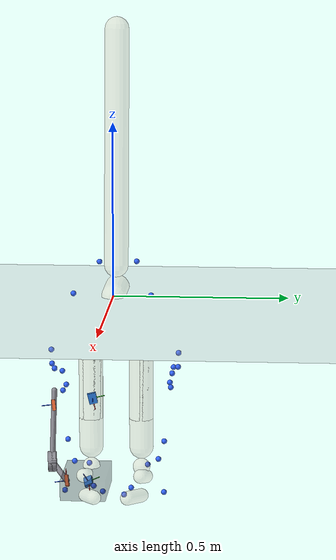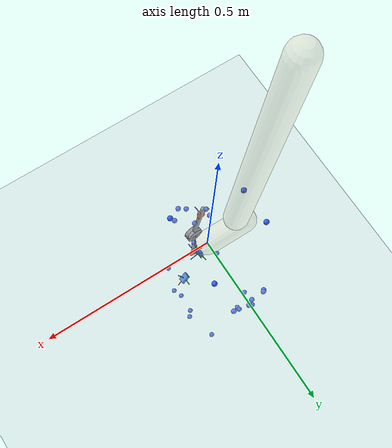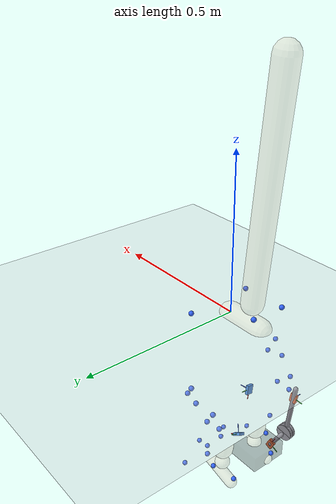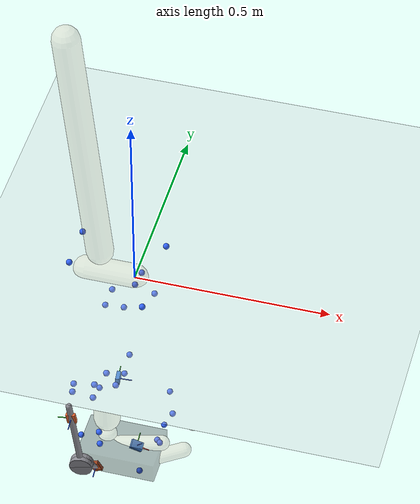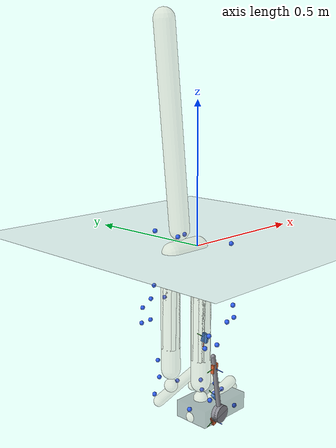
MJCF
<mujoco model="AB20">
  <compiler angle="radian" autolimits="true"/>
  <option timestep="0.005" gravity="0 0 -9.81"><flag contact="disable"/></option>
  <visual><global offwidth="1600" offheight="1200"/>
    <headlight ambient="0.55 0.55 0.55" diffuse="0.6 0.6 0.6"/></visual>
  <default><joint limited="false" damping="0"/><geom contype="0" conaffinity="0"/></default>
  <asset>
    <texture name="grid" type="2d" builtin="checker" rgb1="0.75 0.77 0.8" rgb2="0.85 0.87 0.9" width="512" height="512"/>
    <material name="grid" texture="grid" texrepeat="2 2" texuniform="true"/>
    <material name="skin" rgba="0.85 0.72 0.62 0.28"/>
  </asset>
  <worldbody>
    <light pos="0 0 4" dir="0 0 -1"/>
    <geom name="floor" type="plane" size="0 0 0.05" material="grid"/>
    <body name="pelvis" pos="0 0 0" quat="1 0 0 0">
      <joint name="pelvis_tx" type="slide" axis="1 0 0"/>
      <joint name="pelvis_ty" type="slide" axis="0 0 1"/>
      <joint name="pelvis_tz" type="slide" axis="0 -1 0"/>
      <joint name="pelvis_tilt" type="hinge" axis="0 -1 0"/>
      <joint name="pelvis_list" type="hinge" axis="1 0 0"/>
      <joint name="pelvis_rotation" type="hinge" axis="0 0 1"/>
      <inertial pos="-0.062069295 0 0" mass="10.7342" diaginertia="0.10734209 0.10734209 0.10734209"/>
      <geom type="capsule" fromto="0 0 0 -0.12413859 0 0" size="0.035" material="skin" mass="0"/>
      <site name="m_R_ASIS" pos="0.051108366 -0.10978101 0.018015081" size="0.008" rgba="0.2 0.4 1 1" group="2"/>
      <site name="m_L_ASIS" pos="0.050746581 0.11137873 0.01492082" size="0.008" rgba="0.2 0.4 1 1" group="2"/>
      <site name="m_L_PSIS" pos="-0.14970844 0.054369327 0.069853841" size="0.008" rgba="0.2 0.4 1 1" group="2"/>
      <site name="m_R_PSIS" pos="-0.15140817 -0.054568523 0.0671458" size="0.008" rgba="0.2 0.4 1 1" group="2"/>
      <body name="femur_r" pos="-0.062069295 -0.073306735 -0.058030841" quat="1 0 0 0">
        <joint name="hip_flexion_r" type="hinge" axis="0 -1 0"/>
        <joint name="hip_adduction_r" type="hinge" axis="1 0 0"/>
        <joint name="hip_rotation_r" type="hinge" axis="0 0 1"/>
        <inertial pos="0 0 -0.15976041" mass="8.47781" diaginertia="0.084778101 0.084778101 0.084778101"/>
        <geom type="capsule" fromto="0 0 0 0 0 -0.31952082" size="0.035" material="skin" mass="0"/>
        <site name="m_R_Thigh_Upper" pos="0.038305952 -0.1101171 -0.10849112" size="0.008" rgba="0.2 0.4 1 1" group="2"/>
        <site name="m_R_Thigh_Front" pos="0.058063562 -0.098980911 -0.15935557" size="0.008" rgba="0.2 0.4 1 1" group="2"/>
        <site name="m_R_Thigh_Rear" pos="0.0061621237 -0.11218336 -0.15828189" size="0.008" rgba="0.2 0.4 1 1" group="2"/>
        <site name="m_R_Knee_Lat" pos="-0.0013760862 -0.068321766 -0.38789228" size="0.008" rgba="0.2 0.4 1 1" group="2"/>
        <body name="tibia_r" pos="0 0 0" quat="1 0 0 0">
<geom name="gt_shank_axis_x" type="capsule" size="0.0012" fromto="0.03090 0.00750 -0.25390 0.02819 0.01492 -0.28800" rgba="1 0.1 0.1 1" contype="0" conaffinity="0" mass="0"/>
<geom name="gt_shank_axis_y" type="capsule" size="0.0012" fromto="0.03090 0.00750 -0.25390 0.02794 0.04153 -0.24626" rgba="0.1 0.8 0.1 1" contype="0" conaffinity="0" mass="0"/>
<geom name="gt_shank_axis_z" type="capsule" size="0.0012" fromto="0.03090 0.00750 -0.25390 0.06567 0.01098 -0.25591" rgba="0.1 0.3 1 1" contype="0" conaffinity="0" mass="0"/>
<geom name="exo_shank_axis_x" type="capsule" size="0.0012" fromto="-0.05816 -0.11548 -0.29944 -0.06184 -0.11989 -0.26492" rgba="1 0.1 0.1 1" contype="0" conaffinity="0" mass="0"/>
<geom name="exo_shank_axis_y" type="capsule" size="0.0012" fromto="-0.05816 -0.11548 -0.29944 -0.09290 -0.11717 -0.30336" rgba="0.1 0.8 0.1 1" contype="0" conaffinity="0" mass="0"/>
<geom name="exo_shank_axis_z" type="capsule" size="0.0012" fromto="-0.05816 -0.11548 -0.29944 -0.05601 -0.15016 -0.30364" rgba="0.1 0.3 1 1" contype="0" conaffinity="0" mass="0"/>
<geom name="encoder_shank" type="cylinder" size="0.03 0.012" fromto="-0.03466 -0.13116 -0.46699 -0.03654 -0.10724 -0.46621" rgba="0.55 0.55 0.58 1" contype="0" conaffinity="0" mass="0"/>
<geom name="strut_shank" type="capsule" size="0.008" fromto="-0.03560 -0.11920 -0.46660 -0.06380 -0.11455 -0.25765" rgba="0.55 0.55 0.58 1" contype="0" conaffinity="0" mass="0"/>
          <joint name="knee_r_translation1" type="slide" axis="1 0 0"/>
          <joint name="knee_r_translation2" type="slide" axis="0 0 1"/>
          <joint name="knee_angle_r" type="hinge" axis="0 -1 0"/>
          <inertial pos="0 0 -0.20258409" mass="3.37922" diaginertia="0.033792204 0.033792204 0.033792204"/>
          <geom type="capsule" fromto="0 0 0 0 0 -0.40516817" size="0.035" material="skin" mass="0"/>
          <site name="m_R_Shank_Upper" pos="-0.056292605 -0.089393352 -0.19625522" size="0.008" rgba="0.2 0.4 1 1" group="2"/>
          <site name="m_R_Shank_Front" pos="-0.0089238407 -0.082856207 -0.24234959" size="0.008" rgba="0.2 0.4 1 1" group="2"/>
          <site name="m_R_Shank_Rear" pos="-0.064444327 -0.079157425 -0.23985187" size="0.008" rgba="0.2 0.4 1 1" group="2"/>
          <site name="m_R_Ankle_Lat" pos="-0.0064313623 -0.049930393 -0.45525184" size="0.008" rgba="0.2 0.4 1 1" group="2"/>
          <site name="gt_shank_imu" type="box" size="0.016 0.012 0.005" pos="0.0309 0.0075 -0.2539" quat="0.67777575 0.04381902 0.72576214 0.10940406" rgba="0.16 0.47 0.84 1" group="1"/>
          <site name="exo_shank_imu" type="box" size="0.016 0.012 0.005" pos="-0.058161 -0.115482 -0.299442" quat="-0.42628638 -0.51546842 0.54240985 -0.50829497" rgba="0.92 0.41 0.20 1" group="1"/>
          <body name="talus_r" pos="0 0 -0.4665836" quat="1 0 0 0">
            <joint name="ankle_angle_r" type="hinge" axis="-0.10501355 -0.97912632 -0.17402245"/>
            <inertial pos="0 0 0" mass="0.0911455" diaginertia="0.00091145528 0.00091145528 0.00091145528"/>
            <geom type="sphere" size="0.025" material="skin" mass="0"/>
            <body name="calcn_r" pos="-0.052919261 -0.0085938188 -0.045519028" quat="1 0 0 0">
<geom name="gt_foot_axis_x" type="capsule" size="0.0012" fromto="0.13130 0.00720 0.02080 0.16124 0.01386 0.00395" rgba="1 0.1 0.1 1" contype="0" conaffinity="0" mass="0"/>
<geom name="gt_foot_axis_y" type="capsule" size="0.0012" fromto="0.13130 0.00720 0.02080 0.13221 0.03916 0.03504" rgba="0.1 0.8 0.1 1" contype="0" conaffinity="0" mass="0"/>
<geom name="gt_foot_axis_z" type="capsule" size="0.0012" fromto="0.13130 0.00720 0.02080 0.14940 -0.00542 0.04797" rgba="0.1 0.3 1 1" contype="0" conaffinity="0" mass="0"/>
<geom name="exo_foot_axis_x" type="capsule" size="0.0012" fromto="0.04208 -0.06544 -0.00550 0.02813 -0.07014 0.02625" rgba="1 0.1 0.1 1" contype="0" conaffinity="0" mass="0"/>
<geom name="exo_foot_axis_y" type="capsule" size="0.0012" fromto="0.04208 -0.06544 -0.00550 0.01001 -0.06482 -0.01951" rgba="0.1 0.8 0.1 1" contype="0" conaffinity="0" mass="0"/>
<geom name="exo_foot_axis_z" type="capsule" size="0.0012" fromto="0.04208 -0.06544 -0.00550 0.04340 -0.10011 -0.01006" rgba="0.1 0.3 1 1" contype="0" conaffinity="0" mass="0"/>
<geom name="encoder_foot" type="cylinder" size="0.03 0.012" fromto="0.01834 -0.12252 0.04465 0.01626 -0.09868 0.04635" rgba="0.55 0.55 0.58 1" contype="0" conaffinity="0" mass="0"/>
<geom name="strut_foot" type="capsule" size="0.008" fromto="0.01730 -0.11060 0.04550 0.04208 -0.06544 -0.00550" rgba="0.55 0.55 0.58 1" contype="0" conaffinity="0" mass="0"/>
<geom name="shoe" type="box" pos="0.09475 -0.00355 0.01231" size="0.10338 0.06551 0.03000" rgba="0.15 0.15 0.18 0.35" contype="0" conaffinity="0" mass="0"/>
              <joint name="subtalar_angle_r" type="hinge" axis="0.78717961 0.12094949 0.60474746"/>
              <inertial pos="0.10111344 0 0.030334033" mass="1.13932" diaginertia="0.011393191 0.011393191 0.011393191"/>
              <geom type="capsule" fromto="0 0 0 0.20222688 0 0.060668065" size="0.02" material="skin" mass="0"/>
              <site name="m_R_Heel" pos="-0.015632192 -0.0043478364 0.033050618" size="0.008" rgba="0.2 0.4 1 1" group="2"/>
              <site name="m_R_Toe_Lat" pos="0.15727562 -0.058258582 0.0023123927" size="0.008" rgba="0.2 0.4 1 1" group="2"/>
              <site name="m_R_Toe_Med" pos="0.17409271 0.052769953 0.0054565079" size="0.008" rgba="0.2 0.4 1 1" group="2"/>
              <site name="m_R_Toe_Tip" pos="0.18813299 0.028012807 0.025688444" size="0.008" rgba="0.2 0.4 1 1" group="2"/>
              <site name="gt_foot_imu" type="box" size="0.016 0.012 0.005" pos="0.1313 0.0072 0.0208" quat="0.94137406 0.20387234 0.2652216 0.043685764" rgba="0.16 0.47 0.84 1" group="1"/>
              <site name="exo_foot_imu" type="box" size="0.016 0.012 0.005" pos="0.04208 -0.065437 -0.005504" quat="-0.349599 -0.42242092 0.62178782 -0.55921464" rgba="0.92 0.41 0.20 1" group="1"/>
              <body name="toes_r" pos="0.18079083 -0.0010920252 -0.0020222688" quat="1 0 0 0">
                <joint name="mtp_angle_r" type="hinge" axis="-0.5809544 -0.81393611 0"/>
                <inertial pos="0.034985251 0.017694852 0.0060668065" mass="0.197421" diaginertia="0.0019742121 0.0019742121 0.0019742121"/>
                <geom type="capsule" fromto="0 0 0 0.069970502 0.035389705 0.012133613" size="0.02" material="skin" mass="0"/>
              </body>
            </body>
          </body>
        </body>
      </body>
      <body name="femur_l" pos="-0.062069295 0.073306735 -0.058030841" quat="1 0 0 0">
        <joint name="hip_flexion_l" type="hinge" axis="0 -1 0"/>
        <joint name="hip_adduction_l" type="hinge" axis="-1 0 0"/>
        <joint name="hip_rotation_l" type="hinge" axis="0 0 -1"/>
        <inertial pos="0 0 -0.15976041" mass="8.47781" diaginertia="0.084778101 0.084778101 0.084778101"/>
        <geom type="capsule" fromto="0 0 0 0 0 -0.31952082" size="0.035" material="skin" mass="0"/>
        <site name="m_L_Thigh_Upper" pos="0.024962017 0.11045665 -0.11602268" size="0.008" rgba="0.2 0.4 1 1" group="2"/>
        <site name="m_L_Thigh_Front" pos="0.062857813 0.094347682 -0.16711085" size="0.008" rgba="0.2 0.4 1 1" group="2"/>
        <site name="m_L_Thigh_Rear" pos="0.0063585596 0.10791949 -0.16262585" size="0.008" rgba="0.2 0.4 1 1" group="2"/>
        <site name="m_L_Knee_Lat" pos="-0.0010430354 0.066701353 -0.38891846" size="0.008" rgba="0.2 0.4 1 1" group="2"/>
        <body name="tibia_l" pos="0 0 0" quat="1 0 0 0">
          <joint name="knee_l_translation1" type="slide" axis="1 0 0"/>
          <joint name="knee_l_translation2" type="slide" axis="0 0 1"/>
          <joint name="knee_angle_l" type="hinge" axis="0 -1 0"/>
          <inertial pos="0 0 -0.20258409" mass="3.37922" diaginertia="0.033792204 0.033792204 0.033792204"/>
          <geom type="capsule" fromto="0 0 0 0 0 -0.40516817" size="0.035" material="skin" mass="0"/>
          <site name="m_L_Shank_Upper" pos="-0.050420089 0.090620389 -0.17817022" size="0.008" rgba="0.2 0.4 1 1" group="2"/>
          <site name="m_L_Shank_Front" pos="-0.01835341 0.084923145 -0.23079278" size="0.008" rgba="0.2 0.4 1 1" group="2"/>
          <site name="m_L_Shank_Rear" pos="-0.066996398 0.078858672 -0.22894228" size="0.008" rgba="0.2 0.4 1 1" group="2"/>
          <site name="m_L_Ankle_Lat" pos="-0.011115372 0.049066955 -0.44630866" size="0.008" rgba="0.2 0.4 1 1" group="2"/>
          <body name="talus_l" pos="0 0 -0.4665836" quat="1 0 0 0">
            <joint name="ankle_angle_l" type="hinge" axis="0.10501355 -0.97912632 0.17402245"/>
            <inertial pos="0 0 0" mass="0.0911455" diaginertia="0.00091145528 0.00091145528 0.00091145528"/>
            <geom type="sphere" size="0.025" material="skin" mass="0"/>
            <body name="calcn_l" pos="-0.052919261 0.0085938188 -0.045519028" quat="1 0 0 0">
              <joint name="subtalar_angle_l" type="hinge" axis="-0.78717961 0.12094949 -0.60474746"/>
              <inertial pos="0.10111344 0 0.030334033" mass="1.13932" diaginertia="0.011393191 0.011393191 0.011393191"/>
              <geom type="capsule" fromto="0 0 0 0.20222688 0 0.060668065" size="0.02" material="skin" mass="0"/>
              <site name="m_L_Heel" pos="-0.017304438 0.0043706617 0.031015955" size="0.008" rgba="0.2 0.4 1 1" group="2"/>
              <site name="m_L_Toe_Lat" pos="0.15959466 0.064771293 0.0022695198" size="0.008" rgba="0.2 0.4 1 1" group="2"/>
              <site name="m_L_Toe_Med" pos="0.17540969 -0.049233314 -0.0023812179" size="0.008" rgba="0.2 0.4 1 1" group="2"/>
              <site name="m_L_Toe_Tip" pos="0.192765 -0.027323785 0.023930693" size="0.008" rgba="0.2 0.4 1 1" group="2"/>
              <body name="toes_l" pos="0.18079083 0.0010920252 -0.0020222688" quat="1 0 0 0">
                <joint name="mtp_angle_l" type="hinge" axis="0.5809544 -0.81393611 0"/>
                <inertial pos="0.034985251 -0.017694852 0.0060668065" mass="0.197421" diaginertia="0.0019742121 0.0019742121 0.0019742121"/>
                <geom type="capsule" fromto="0 0 0 0.069970502 -0.035389705 0.012133613" size="0.02" material="skin" mass="0"/>
              </body>
            </body>
          </body>
        </body>
      </body>
      <body name="torso" pos="-0.088407045 0 0.071550885" quat="1 0 0 0">
        <joint name="lumbar_extension" type="hinge" axis="0 -1 0"/>
        <joint name="lumbar_bending" type="hinge" axis="1 0 0"/>
        <joint name="lumbar_rotation" type="hinge" axis="0 0 1"/>
        <inertial pos="-0.031733677 0 0.33849256" mass="31.2051" diaginertia="0.3120513 0.3120513 0.3120513"/>
        <geom type="capsule" fromto="0 0 0 -0.063467355 0 0.67698512" size="0.035" material="skin" mass="0"/>
      </body>
    </body>
  </worldbody>
  <sensor>
<accelerometer name="gt_foot_imu_acc" site="gt_foot_imu"/>
<gyro name="gt_foot_imu_gyr" site="gt_foot_imu"/>
<accelerometer name="exo_foot_imu_acc" site="exo_foot_imu"/>
<gyro name="exo_foot_imu_gyr" site="exo_foot_imu"/>
<accelerometer name="gt_shank_imu_acc" site="gt_shank_imu"/>
<gyro name="gt_shank_imu_gyr" site="gt_shank_imu"/>
<accelerometer name="exo_shank_imu_acc" site="exo_shank_imu"/>
<gyro name="exo_shank_imu_gyr" site="exo_shank_imu"/>
</sensor>
</mujoco>
